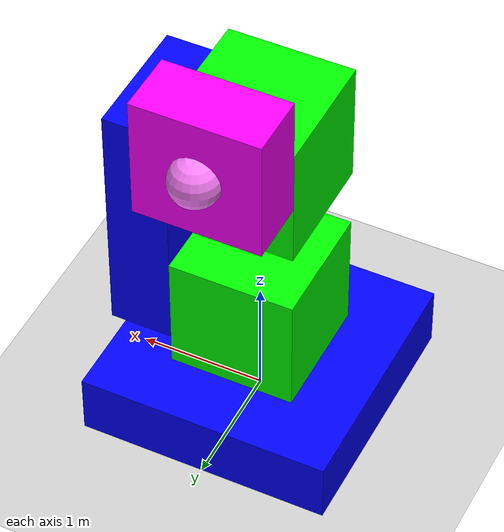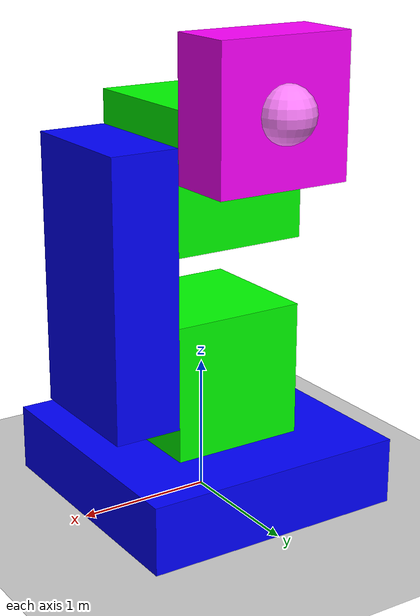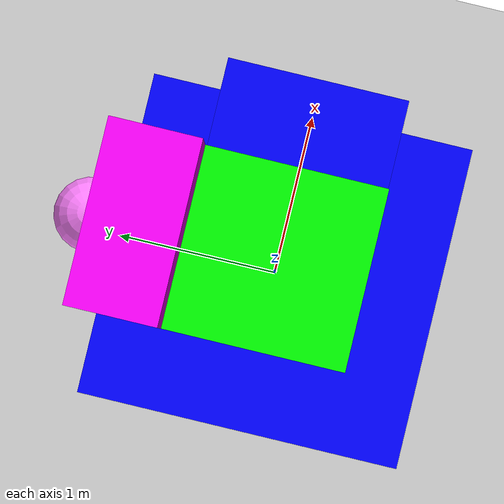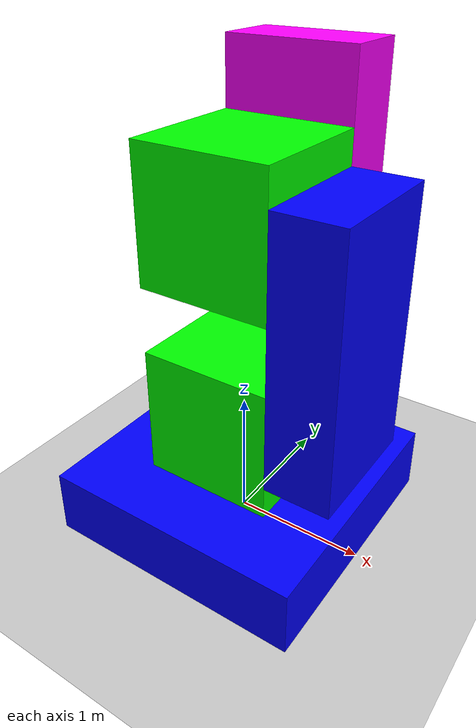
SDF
<?xml version="1.0" ?>
<sdf version="1.10">
    <world name="pt_world">
        <physics name="1ms" type="ignored">
            <max_step_size>0.001</max_step_size>
            <real_time_factor>1.0</real_time_factor>
        </physics>
        <plugin
            filename="gz-sim-physics-system"
            name="gz::sim::systems::Physics">
        </plugin>
        <plugin
            filename="gz-sim-user-commands-system"
            name="gz::sim::systems::UserCommands">
        </plugin>
        <plugin
            filename="gz-sim-scene-broadcaster-system"
            name="gz::sim::systems::SceneBroadcaster">
        </plugin>

        <light type="directional" name="sun">
            <cast_shadows>true</cast_shadows>
            <pose>0 0 10 0 0 0</pose>
            <diffuse>0.8 0.8 0.8 1</diffuse>
            <specular>0.2 0.2 0.2 1</specular>
            <attenuation>
                <range>1000</range>
                <constant>0.9</constant>
                <linear>0.01</linear>
                <quadratic>0.001</quadratic>
            </attenuation>
            <direction>-0.5 0.1 -0.9</direction>
        </light>

        <model name="ground_plane">
            <static>true</static>
            <link name="link">
                <collision name="collision">
                <geometry>
                    <plane>
                    <normal>0 0 1</normal>
                    </plane>
                </geometry>
                </collision>
                <visual name="visual">
                <geometry>
                    <plane>
                    <normal>0 0 1</normal>
                    <size>100 100</size>
                    </plane>
                </geometry>
                <material>
                    <ambient>0.8 0.8 0.8 1</ambient>
                    <diffuse>0.8 0.8 0.8 1</diffuse>
                    <specular>0.8 0.8 0.8 1</specular>
                </material>
                </visual>
            </link>
        </model>

        <model name="pt_camera">
            <pose relative_to='world'>0 0 0 0 0 0</pose>
            <link name="base">
                <pose relative_to='__model__'>0 0 0.25 0 0 0</pose>
                <inertial>
                    <mass>1.14395</mass>
                    <inertia>
                        <ixx>0.095329</ixx>
                        <ixy>0</ixy>
                        <ixz>0</ixz>
                        <iyy>0.381317</iyy>
                        <iyz>0</iyz>
                        <izz>0.476646</izz>
                    </inertia>
                </inertial>
                <visual name='visual'>
                    <geometry>
                        <box>
                            <size>2.0 2.0 0.5</size>
                        </box>
                    </geometry>
                    <!--let's add color to our link-->
                    <material>
                        <ambient>0.0 0.0 1.0 1</ambient>
                        <diffuse>0.0 0.0 1.0 1</diffuse>
                        <specular>0.0 0.0 1.0 1</specular>
                    </material>
                </visual>
                <collision name='collision'>
                    <geometry>
                        <box>
                            <size>2.0 2.0 0.5</size>
                        </box>
                    </geometry>
                </collision>
            </link>
            <link name="servo_1">
                <pose relative_to='__model__'>0 0 1 0 0 0</pose>
                <inertial>
                    <mass>0.009</mass>
                    <inertia>
                        <ixx>0.016</ixx>
                        <ixy>0</ixy>
                        <ixz>0</ixz>
                        <iyy>0.016</iyy>
                        <iyz>0</iyz>
                        <izz>0.016</izz>
                    </inertia>
                </inertial>
                <visual name='visual'>
                    <geometry>
                        <box>
                            <size>1.0 1.0 1.0</size>
                        </box>
                    </geometry>
                    <!--let's add color to our link-->
                    <material>
                        <ambient>0.0 1 0.0 1</ambient>
                        <diffuse>0.0 1 0.0 1</diffuse>
                        <specular>0.0 1 0.0 1</specular>
                    </material>
                </visual>
            </link>
            <link name="servo_2">
                <pose relative_to='__model__'>0 0 2.5 0 0 0</pose>
                <inertial>
                    <mass>0.009</mass>
                    <inertia>
                        <ixx>0.016</ixx>
                        <ixy>0</ixy>
                        <ixz>0</ixz>
                        <iyy>0.016</iyy>
                        <iyz>0</iyz>
                        <izz>0.016</izz>
                    </inertia>
                </inertial>
                <visual name='visual'>
                    <geometry>
                        <box>
                            <size>1.0 1.0 1.0</size>
                        </box>
                    </geometry>
                    <!--let's add color to our link-->
                    <material>
                        <ambient>0.0 1 0.0 1</ambient>
                        <diffuse>0.0 1 0.0 1</diffuse>
                        <specular>0.0 1 0.0 1</specular>
                    </material>
                </visual>
            </link>
            <link name="bracket_1">
                <pose relative_to='__model__'>0.75 0 1.75 0 0 0</pose>
                <inertial>
                    <mass>0.1</mass>
                    <inertia>
                        <ixx>0.016</ixx>
                        <ixy>0</ixy>
                        <ixz>0</ixz>
                        <iyy>0.016</iyy>
                        <iyz>0</iyz>
                        <izz>0.016</izz>
                    </inertia>
                </inertial>
                <visual name='visual'>
                    <geometry>
                        <box>
                            <size>0.5 1.0 2.0</size>
                        </box>
                    </geometry>
                    <!--let's add color to our link-->
                    <material>
                        <ambient>0.0 0.0 1.0 1</ambient>
                        <diffuse>0.0 0.0 1.0 1</diffuse>
                        <specular>0.0 0.0 1.0 1</specular>
                    </material>
                </visual>
            </link>
            <link name="bracket_2">
                <pose relative_to='__model__'>0 0.75 3 0 0 1.57</pose>
                <inertial>
                    <mass>0.1</mass>
                    <inertia>
                        <ixx>0.016</ixx>
                        <ixy>0</ixy>
                        <ixz>0</ixz>
                        <iyy>0.016</iyy>
                        <iyz>0</iyz>
                        <izz>0.016</izz>
                    </inertia>
                </inertial>
                <visual name='visual'>
                    <geometry>
                        <box>
                            <size>0.5 1.0 1.0</size>
                        </box>
                    </geometry>
                    <!--let's add color to our link-->
                    <material>
                        <ambient>1.0 0.0 1.0 1</ambient>
                        <diffuse>1.0 0.0 1.0 1</diffuse>
                        <specular>1.0 0.0 1.0 1</specular>
                    </material>
                </visual>
            </link>
            <link name="camera">
                <pose relative_to='__model__'>0 1 3 0 0 1.57</pose>
                <inertial>
                    <mass>0.01</mass>
                    <inertia>
                        <ixx>0.016</ixx>
                        <ixy>0</ixy>
                        <ixz>0</ixz>
                        <iyy>0.016</iyy>
                        <iyz>0</iyz>
                        <izz>0.016</izz>
                    </inertia>
                </inertial>
                <visual name='visual'>
                    <geometry>
                        <sphere>
                            <radius>0.2</radius>
                        </sphere>
                    </geometry>
                    <material>
                        <ambient>1.0 0.5 1.0 1</ambient>
                        <diffuse>1.0 0.5 1.0 1</diffuse>
                        <specular>1.0 0.5 1.0 1</specular>
                    </material>
                </visual>
            </link>
            <joint name="servo_1_joint" type='revolute'>
                <pose relative_to='servo_1'/>
                <parent>base</parent>
                <child>servo_1</child>
                <axis>
                    <dynamics>
                        <damping>2.0</damping>
                        <friction>0.05</friction>
                    </dynamics>
                    <xyz expressed_in='__model__'>0 0 1</xyz> <!--can be defined as any frame or even arbitrary frames-->
                    <limit>
                        <lower>-1.57</lower>
                        <upper>1.57</upper>
                        <effort>10</effort>
                        <velocity>2.0</velocity>
                    </limit>
                </axis>
            </joint>
            <joint name="bracket_1_joint" type='fixed'>
                <pose relative_to='servo_1'/>
                <parent>servo_1</parent>
                <child>bracket_1</child>
            </joint>
            <joint name="servo_2_joint" type='revolute'>
                <pose relative_to='servo_2'/>
                <parent>bracket_1</parent>
                <child>servo_2</child>
                <axis>
                    <dynamics>
                        <damping>2.0</damping>
                        <friction>0.05</friction>
                    </dynamics>
                    <xyz expressed_in='__model__'>1 0 0</xyz> <!--can be defined as any frame or even arbitrary frames-->
                    <limit>
                        <lower>-0.78</lower>
                        <upper>2.35</upper>
                        <effort>10</effort>
                        <velocity>5.0</velocity>
                    </limit>
                </axis>
            </joint>
            <joint name="bracket_2_joint" type='fixed'>
                <pose relative_to='servo_2'/>
                <parent>servo_2</parent>
                <child>bracket_2</child>
            </joint>
            <joint name="camera_joint" type='fixed'>
                <pose relative_to='bracket_2'/>
                <parent>bracket_2</parent>
                <child>camera</child>
            </joint>
            <plugin
                filename="gz-sim-joint-position-controller-system"
                name="gz::sim::systems::JointPositionController">
                <joint_name>servo_1_joint</joint_name>
                <joint_index>0</joint_index>
                <topic>cmd_yaw</topic>
            </plugin>
            <plugin
                filename="gz-sim-joint-position-controller-system"
                name="gz::sim::systems::JointPositionController">
                <joint_name>servo_2_joint</joint_name>
                <joint_index>0</joint_index>
                <topic>cmd_pitch</topic>
            </plugin>
            <!-- Moving Base-->
            <!-- Left -->
            <plugin filename="gz-sim-triggered-publisher-system"
                    name="gz::sim::systems::TriggeredPublisher">
                <input type="gz.msgs.Int32" topic="/keyboard/keypress">
                    <match field="data">16777234</match>
                </input>
                <output type="gz.msgs.Double" topic="/cmd_yaw">
                    data: 0.5
                </output>
            </plugin>
            <!-- Right-->
            <plugin filename="gz-sim-triggered-publisher-system"
                    name="gz::sim::systems::TriggeredPublisher">
                <input type="gz.msgs.Int32" topic="/keyboard/keypress">
                    <match field="data">16777236</match>
                </input>
                <output type="gz.msgs.Double" topic="/cmd_yaw">
                    data: -0.5
                </output>
            </plugin>
            <!-- Moving Pitch-->
            <!-- Up -->
            <plugin filename="gz-sim-triggered-publisher-system"
                    name="gz::sim::systems::TriggeredPublisher">
                <input type="gz.msgs.Int32" topic="/keyboard/keypress">
                    <match field="data">16777235</match>
                </input>
                <output type="gz.msgs.Double" topic="/cmd_pitch">
                    data: 0.5
                </output>
            </plugin>
            <!-- Down -->
            <plugin filename="gz-sim-triggered-publisher-system"
                    name="gz::sim::systems::TriggeredPublisher">
                <input type="gz.msgs.Int32" topic="/keyboard/keypress">
                    <match field="data">16777237</match>
                </input>
                <output type="gz.msgs.Double" topic="/cmd_pitch">
                    data: -0.5
                </output>
            </plugin>
        </model>
    </world>
</sdf>
